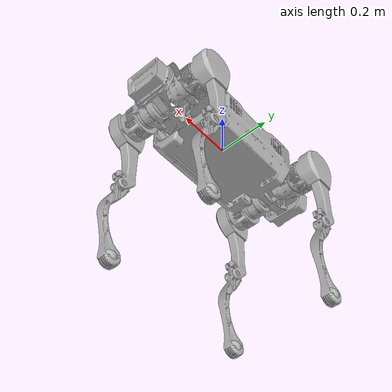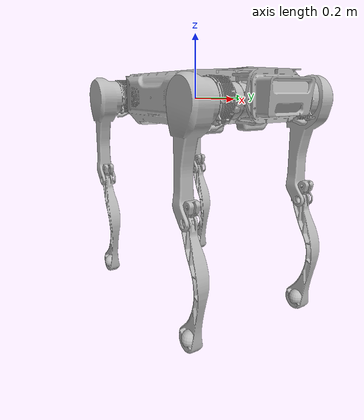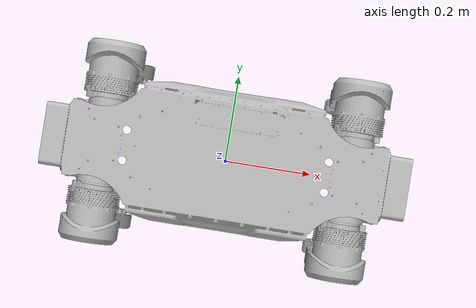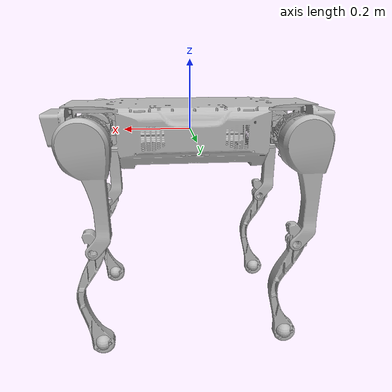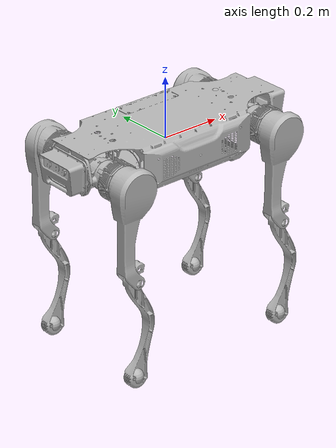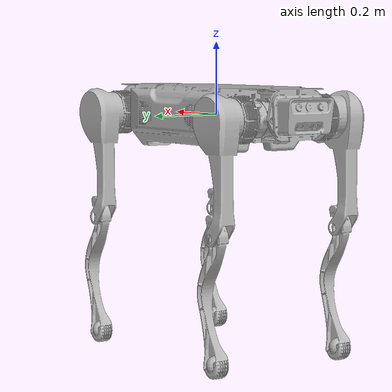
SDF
<sdf version='1.7'>
  <model name='x20'>
    <link name='body'>
      <inertial>
        <pose>0.005 0.000413 0.004 0 -0 0</pose>
        <mass>26.398</mass>
        <inertia>
          <ixx>0.1632</ixx>
          <ixy>-5.2136e-05</ixy>
          <ixz>-0.00019406</ixz>
          <iyy>0.40648</iyy>
          <iyz>8.2679e-05</iyz>
          <izz>0.52596</izz>
        </inertia>
      </inertial>
      <collision name='body_collision_collision'>
        <pose>0 0 0 0 -0 0</pose>
        <geometry>
          <mesh>
            <scale>1 1 1</scale>
            <uri>model:///meshes/x20_torso.stl</uri>
          </mesh>
        </geometry>
        <surface>
          <contact>
            <ode/>
          </contact>
          <friction>
            <ode/>
          </friction>
        </surface>
      </collision>
      <visual name='body_visual'>
        <pose>0 0 0 0 -0 0</pose>
        <geometry>
          <mesh>
            <scale>1 1 1</scale>
            <uri>model:///meshes/x20_torso.stl</uri>
          </mesh>
        </geometry>
      </visual>
      <visual name='body_fixed_joint_lump__imu_link_visual_1'>
        <pose>0 0 0 0 -0 0</pose>
        <geometry>
          <box>
            <size>0.001 0.001 0.001</size>
          </box>
        </geometry>
        <material>
          <script>
            <name>Gazebo/Red</name>
            <uri>file://media/materials/scripts/gazebo.material</uri>
          </script>
        </material>
      </visual>
      <gravity>1</gravity>
    </link>
    <joint name='10' type='revolute'>
      <pose relative_to='body'>0.292 -0.08 0 0 -0 0</pose>
      <parent>body</parent>
      <child>hip2</child>
      <axis>
        <xyz>-1 0 0</xyz>
        <limit>
          <lower>-0.38397</lower>
          <upper>0.38397</upper>
          <effort>126.1</effort>
          <velocity>12</velocity>
        </limit>
        <dynamics>
          <damping>0</damping>
          <friction>0</friction>
          <spring_reference>0</spring_reference>
          <spring_stiffness>0</spring_stiffness>
        </dynamics>
      </axis>
    </joint>
    <link name='hip2'>
      <pose relative_to='10'>0 0 0 0 -0 0</pose>
      <inertial>
        <pose>-0.000757 0.009 5.1e-05 0 -0 0</pose>
        <mass>1.5767</mass>
        <inertia>
          <ixx>0.0012141</ixx>
          <ixy>-6.1989e-06</ixy>
          <ixz>-2.8652e-06</ixz>
          <iyy>0.0016912</iyy>
          <iyz>3.7e-06</iyz>
          <izz>0.0013431</izz>
        </inertia>
      </inertial>
      <collision name='hip2_collision'>
        <pose>0 0 0 0 -0 0</pose>
        <geometry>
          <mesh>
            <scale>1 1 1</scale>
            <uri>model:///meshes/x20_fr_hip.stl</uri>
          </mesh>
        </geometry>
        <surface>
          <contact>
            <ode/>
          </contact>
          <friction>
            <ode>
              <mu>0.2</mu>
              <mu2>0.2</mu2>
            </ode>
          </friction>
        </surface>
      </collision>
      <visual name='hip2_visual'>
        <pose>0 0 0 0 -0 0</pose>
        <geometry>
          <mesh>
            <scale>1 1 1</scale>
            <uri>model:///meshes/x20_fr_hip.stl</uri>
          </mesh>
        </geometry>
      </visual>
    </link>
    <joint name='4' type='revolute'>
      <pose relative_to='hip2'>0 -0.12325 0 0 -0 0</pose>
      <parent>hip2</parent>
      <child>upper2</child>
      <axis>
        <xyz>0 -1 0</xyz>
        <limit>
          <lower>-2.75762</lower>
          <upper>0.48869</upper>
          <effort>111.4</effort>
          <velocity>19</velocity>
        </limit>
        <dynamics>
          <damping>0</damping>
          <friction>0</friction>
          <spring_reference>0</spring_reference>
          <spring_stiffness>0</spring_stiffness>
        </dynamics>
      </axis>
    </joint>
    <link name='upper2'>
      <pose relative_to='4'>0 0 0 0 -0 0</pose>
      <inertial>
        <pose>-0.002527 0.022119 -0.029194 0 -0 0</pose>
        <mass>3.0062</mass>
        <inertia>
          <ixx>0.00581</ixx>
          <ixy>-4.2781e-05</ixy>
          <ixz>-3.0682e-06</ixz>
          <iyy>0.0080684</iyy>
          <iyz>6.8812e-05</iyz>
          <izz>0.0038739</izz>
        </inertia>
      </inertial>
      <collision name='upper2_collision'>
        <pose>0 0 0 0 -0 0</pose>
        <geometry>
          <mesh>
            <scale>1 1 1</scale>
            <uri>model:///meshes/x20_r_thigh.stl</uri>
          </mesh>
        </geometry>
        <surface>
          <contact>
            <ode>
              <kp>1e+06</kp>
              <kd>100</kd>
            </ode>
          </contact>
          <friction>
            <ode>
              <mu>0.2</mu>
              <mu2>0.2</mu2>
            </ode>
          </friction>
        </surface>
      </collision>
      <visual name='upper2_visual'>
        <pose>0 0 0 0 -0 0</pose>
        <geometry>
          <mesh>
            <scale>1 1 1</scale>
            <uri>model:///meshes/x20_r_thigh.stl</uri>
          </mesh>
        </geometry>
      </visual>
      <self_collide>0</self_collide>
      <self_collide>0</self_collide>
    </link>
    <joint name='5' type='revolute'>
      <pose relative_to='upper2'>0 0 -0.3 0 -0 0</pose>
      <parent>upper2</parent>
      <child>lower2</child>
      <axis>
        <xyz>0 -1 0</xyz>
        <limit>
          <lower>0.66322</lower>
          <upper>2.84488</upper>
          <effort>195.8</effort>
          <velocity>19</velocity>
        </limit>
        <dynamics>
          <damping>0</damping>
          <friction>0</friction>
          <spring_reference>0</spring_reference>
          <spring_stiffness>0</spring_stiffness>
        </dynamics>
      </axis>
    </joint>
    <link name='lower2'>
      <pose relative_to='5'>0 0 0 0 -0 0</pose>
      <inertial>
        <pose>0.007522 2.6e-05 -0.17586 0 -0 0</pose>
        <mass>0.54849</mass>
        <inertia>
          <ixx>0.0057</ixx>
          <ixy>1.16e-07</ixy>
          <ixz>0.000153</ixz>
          <iyy>0.006</iyy>
          <iyz>-1.12e-06</iyz>
          <izz>0.00029</izz>
        </inertia>
      </inertial>
      <collision name='lower2_collision'>
        <pose>0 0 0 0 -0 0</pose>
        <geometry>
          <mesh>
            <scale>1 1 1</scale>
            <uri>model:///meshes/x20_shank.stl</uri>
          </mesh>
        </geometry>
        <surface>
          <contact>
            <ode>
              <kp>1e+06</kp>
              <kd>100</kd>
            </ode>
          </contact>
          <friction>
            <ode>
              <mu>0.6</mu>
              <mu2>0.6</mu2>
            </ode>
          </friction>
        </surface>
      </collision>
      <visual name='lower2_visual'>
        <pose>0 0 0 0 -0 0</pose>
        <geometry>
          <mesh>
            <scale>1 1 1</scale>
            <uri>model:///meshes/x20_shank.stl</uri>
          </mesh>
        </geometry>
      </visual>
      <self_collide>0</self_collide>
      <self_collide>1</self_collide>
    </link>
    <joint name='jtoe2' type='fixed'>
      <pose relative_to='lower2'>0 0 -0.33 0 -0 0</pose>
      <parent>lower2</parent>
      <child>toe2</child>
      <axis>
        <dynamics>
          <spring_reference>0</spring_reference>
          <spring_stiffness>0</spring_stiffness>
        </dynamics>
        <xyz>0 0 1</xyz>
        <limit>
          <lower>-1e+16</lower>
          <upper>1e+16</upper>
        </limit>
      </axis>
      <physics>
        <ode>
          <limit>
            <cfm>0</cfm>
            <erp>0.2</erp>
          </limit>
        </ode>
      </physics>
    </joint>
    <link name='toe2'>
      <pose relative_to='jtoe2'>0 0 0 0 -0 0</pose>
      <inertial>
        <pose>0 0 0 0 -0 0</pose>
        <mass>0.001</mass>
        <inertia>
          <ixx>5.184e-07</ixx>
          <ixy>0</ixy>
          <ixz>0</ixz>
          <iyy>5.184e-07</iyy>
          <iyz>0</iyz>
          <izz>5.184e-07</izz>
        </inertia>
      </inertial>
      <collision name='toe2_collision_collision'>
        <pose>0 0 0 0 -0 0</pose>
        <geometry>
          <sphere>
            <radius>0.036</radius>
          </sphere>
        </geometry>
        <surface>
          <contact>
            <ode>
              <kp>1e+06</kp>
              <kd>1</kd>
            </ode>
          </contact>
          <friction>
            <ode>
              <mu>0.6</mu>
              <mu2>0.6</mu2>
            </ode>
          </friction>
        </surface>
      </collision>
      <visual name='toe2_visual'>
        <pose>0 0 0 0 -0 0</pose>
        <geometry>
          <sphere>
            <radius>0.026</radius>
          </sphere>
        </geometry>
      </visual>
      <sensor name='toe2_contact' type='contact'>
        <plugin name='toe2_plugin' filename='libgazebo_ros_bumper.so'>
          <alwaysOn>1</alwaysOn>
          <updateRate>500</updateRate>
          <bumperTopicName>gazebo/toe2_contact_state</bumperTopicName>
          <frameName>world</frameName>
        </plugin>
        <contact>
          <collision>toe2_collision</collision>
          <topic>__default_topic__</topic>
        </contact>
        <update_rate>500</update_rate>
      </sensor>
      <self_collide>0</self_collide>
    </link>
    <joint name='11' type='revolute'>
      <pose relative_to='body'>-0.292 -0.08 0 0 -0 0</pose>
      <parent>body</parent>
      <child>hip3</child>
      <axis>
        <xyz>-1 0 0</xyz>
        <limit>
          <lower>-0.38397</lower>
          <upper>0.38397</upper>
          <effort>126.1</effort>
          <velocity>12</velocity>
        </limit>
        <dynamics>
          <damping>0</damping>
          <friction>0</friction>
          <spring_reference>0</spring_reference>
          <spring_stiffness>0</spring_stiffness>
        </dynamics>
      </axis>
    </joint>
    <link name='hip3'>
      <pose relative_to='11'>0 0 0 0 -0 0</pose>
      <inertial>
        <pose>0.000757 0.008913 -5.1e-05 0 -0 0</pose>
        <mass>1.5767</mass>
        <inertia>
          <ixx>0.0012141</ixx>
          <ixy>6.1989e-06</ixy>
          <ixz>-2.8652e-06</ixz>
          <iyy>0.0016912</iyy>
          <iyz>-3.7e-06</iyz>
          <izz>0.0013431</izz>
        </inertia>
      </inertial>
      <collision name='hip3_collision'>
        <pose>0 0 0 0 -0 0</pose>
        <geometry>
          <mesh>
            <scale>1 1 1</scale>
            <uri>model:///meshes/x20_hr_hip.stl</uri>
          </mesh>
        </geometry>
        <surface>
          <contact>
            <ode/>
          </contact>
          <friction>
            <ode>
              <mu>0.2</mu>
              <mu2>0.2</mu2>
            </ode>
          </friction>
        </surface>
      </collision>
      <visual name='hip3_visual'>
        <pose>0 0 0 0 -0 0</pose>
        <geometry>
          <mesh>
            <scale>1 1 1</scale>
            <uri>model:///meshes/x20_hr_hip.stl</uri>
          </mesh>
        </geometry>
      </visual>
    </link>
    <joint name='6' type='revolute'>
      <pose relative_to='hip3'>0 -0.12325 0 0 -0 0</pose>
      <parent>hip3</parent>
      <child>upper3</child>
      <axis>
        <xyz>0 -1 0</xyz>
        <limit>
          <lower>-2.75762</lower>
          <upper>0.48869</upper>
          <effort>111.4</effort>
          <velocity>19</velocity>
        </limit>
        <dynamics>
          <damping>0</damping>
          <friction>0</friction>
          <spring_reference>0</spring_reference>
          <spring_stiffness>0</spring_stiffness>
        </dynamics>
      </axis>
    </joint>
    <link name='upper3'>
      <pose relative_to='6'>0 0 0 0 -0 0</pose>
      <inertial>
        <pose>-0.002527 0.022119 -0.029194 0 -0 0</pose>
        <mass>3.0062</mass>
        <inertia>
          <ixx>0.00581</ixx>
          <ixy>-4.2781e-05</ixy>
          <ixz>-3.0681e-06</ixz>
          <iyy>0.0080684</iyy>
          <iyz>6.8812e-05</iyz>
          <izz>0.0038739</izz>
        </inertia>
      </inertial>
      <collision name='upper3_collision'>
        <pose>0 0 0 0 -0 0</pose>
        <geometry>
          <mesh>
            <scale>1 1 1</scale>
            <uri>model:///meshes/x20_r_thigh.stl</uri>
          </mesh>
        </geometry>
        <surface>
          <contact>
            <ode>
              <kp>1e+06</kp>
              <kd>100</kd>
            </ode>
          </contact>
          <friction>
            <ode>
              <mu>0.2</mu>
              <mu2>0.2</mu2>
            </ode>
          </friction>
        </surface>
      </collision>
      <visual name='upper3_visual'>
        <pose>0 0 0 0 -0 0</pose>
        <geometry>
          <mesh>
            <scale>1 1 1</scale>
            <uri>model:///meshes/x20_r_thigh.stl</uri>
          </mesh>
        </geometry>
      </visual>
      <self_collide>0</self_collide>
      <self_collide>0</self_collide>
    </link>
    <joint name='7' type='revolute'>
      <pose relative_to='upper3'>0 0 -0.3 0 -0 0</pose>
      <parent>upper3</parent>
      <child>lower3</child>
      <axis>
        <xyz>0 -1 0</xyz>
        <limit>
          <lower>0.66322</lower>
          <upper>2.84488</upper>
          <effort>195.8</effort>
          <velocity>19</velocity>
        </limit>
        <dynamics>
          <damping>0</damping>
          <friction>0</friction>
          <spring_reference>0</spring_reference>
          <spring_stiffness>0</spring_stiffness>
        </dynamics>
      </axis>
    </joint>
    <link name='lower3'>
      <pose relative_to='7'>0 0 0 0 -0 0</pose>
      <inertial>
        <pose>0.007522 2.6e-05 -0.17586 0 -0 0</pose>
        <mass>0.54849</mass>
        <inertia>
          <ixx>0.0056981</ixx>
          <ixy>1.1608e-07</ixy>
          <ixz>0.00015292</ixz>
          <iyy>0.0059026</iyy>
          <iyz>-1.1243e-06</iyz>
          <izz>0.00028822</izz>
        </inertia>
      </inertial>
      <collision name='lower3_collision'>
        <pose>0 0 0 0 -0 0</pose>
        <geometry>
          <mesh>
            <scale>1 1 1</scale>
            <uri>model:///meshes/x20_shank.stl</uri>
          </mesh>
        </geometry>
        <surface>
          <contact>
            <ode>
              <kp>1e+06</kp>
              <kd>100</kd>
            </ode>
          </contact>
          <friction>
            <ode>
              <mu>0.6</mu>
              <mu2>0.6</mu2>
            </ode>
          </friction>
        </surface>
      </collision>
      <visual name='lower3_visual'>
        <pose>0 0 0 0 -0 0</pose>
        <geometry>
          <mesh>
            <scale>1 1 1</scale>
            <uri>model:///meshes/x20_shank.stl</uri>
          </mesh>
        </geometry>
      </visual>
      <self_collide>0</self_collide>
      <self_collide>1</self_collide>
    </link>
    <joint name='jtoe3' type='fixed'>
      <pose relative_to='lower3'>0 0 -0.33 0 -0 0</pose>
      <parent>lower3</parent>
      <child>toe3</child>
      <axis>
        <dynamics>
          <spring_reference>0</spring_reference>
          <spring_stiffness>0</spring_stiffness>
        </dynamics>
        <xyz>0 0 1</xyz>
        <limit>
          <lower>-1e+16</lower>
          <upper>1e+16</upper>
        </limit>
      </axis>
      <physics>
        <ode>
          <limit>
            <cfm>0</cfm>
            <erp>0.2</erp>
          </limit>
        </ode>
      </physics>
    </joint>
    <link name='toe3'>
      <pose relative_to='jtoe3'>0 0 0 0 -0 0</pose>
      <inertial>
        <pose>0 0 0 0 -0 0</pose>
        <mass>0.001</mass>
        <inertia>
          <ixx>5.184e-07</ixx>
          <ixy>0</ixy>
          <ixz>0</ixz>
          <iyy>5.184e-07</iyy>
          <iyz>0</iyz>
          <izz>5.184e-07</izz>
        </inertia>
      </inertial>
      <collision name='toe3_collision_collision'>
        <pose>0 0 0 0 -0 0</pose>
        <geometry>
          <sphere>
            <radius>0.036</radius>
          </sphere>
        </geometry>
        <surface>
          <contact>
            <ode>
              <kp>1e+06</kp>
              <kd>1</kd>
            </ode>
          </contact>
          <friction>
            <ode>
              <mu>0.6</mu>
              <mu2>0.6</mu2>
            </ode>
          </friction>
        </surface>
      </collision>
      <visual name='toe3_visual'>
        <pose>0 0 0 0 -0 0</pose>
        <geometry>
          <sphere>
            <radius>0.026</radius>
          </sphere>
        </geometry>
      </visual>
      <sensor name='toe3_contact' type='contact'>
        <plugin name='toe3_plugin' filename='libgazebo_ros_bumper.so'>
          <alwaysOn>1</alwaysOn>
          <updateRate>500</updateRate>
          <bumperTopicName>gazebo/toe3_contact_state</bumperTopicName>
          <frameName>world</frameName>
        </plugin>
        <contact>
          <collision>toe3_collision</collision>
          <topic>__default_topic__</topic>
        </contact>
        <update_rate>500</update_rate>
      </sensor>
      <self_collide>0</self_collide>
    </link>
    <joint name='8' type='revolute'>
      <pose relative_to='body'>0.292 0.08 0 0 -0 0</pose>
      <parent>body</parent>
      <child>hip0</child>
      <axis>
        <xyz>1 0 0</xyz>
        <limit>
          <lower>-0.38397</lower>
          <upper>0.38397</upper>
          <effort>126.1</effort>
          <velocity>12</velocity>
        </limit>
        <dynamics>
          <damping>0</damping>
          <friction>0</friction>
          <spring_reference>0</spring_reference>
          <spring_stiffness>0</spring_stiffness>
        </dynamics>
      </axis>
    </joint>
    <link name='hip0'>
      <pose relative_to='8'>0 0 0 0 -0 0</pose>
      <inertial>
        <pose>-0.000757 -0.008913 -5.1e-05 0 -0 0</pose>
        <mass>1.5767</mass>
        <inertia>
          <ixx>0.0012141</ixx>
          <ixy>6.1989e-06</ixy>
          <ixz>2.8652e-06</ixz>
          <iyy>0.0016912</iyy>
          <iyz>3.7e-06</iyz>
          <izz>0.0013431</izz>
        </inertia>
      </inertial>
      <collision name='hip0_collision_collision'>
        <pose>0 0 0 0 -0 0</pose>
        <geometry>
          <mesh>
            <scale>1 1 1</scale>
            <uri>model:///meshes/x20_fl_hip.stl</uri>
          </mesh>
        </geometry>
        <surface>
          <contact>
            <ode/>
          </contact>
          <friction>
            <ode>
              <mu>0.2</mu>
              <mu2>0.2</mu2>
            </ode>
          </friction>
        </surface>
      </collision>
      <visual name='hip0_visual'>
        <pose>0 0 0 0 -0 0</pose>
        <geometry>
          <mesh>
            <scale>1 1 1</scale>
            <uri>model:///meshes/x20_fl_hip.stl</uri>
          </mesh>
        </geometry>
      </visual>
    </link>
    <joint name='0' type='revolute'>
      <pose relative_to='hip0'>0 0.12325 0 0 -0 0</pose>
      <parent>hip0</parent>
      <child>upper0</child>
      <axis>
        <xyz>0 -1 0</xyz>
        <limit>
          <lower>-2.75762</lower>
          <upper>0.48869</upper>
          <effort>111.4</effort>
          <velocity>19</velocity>
        </limit>
        <dynamics>
          <damping>0</damping>
          <friction>0</friction>
          <spring_reference>0</spring_reference>
          <spring_stiffness>0</spring_stiffness>
        </dynamics>
      </axis>
    </joint>
    <link name='upper0'>
      <pose relative_to='0'>0 0 0 0 -0 0</pose>
      <inertial>
        <pose>-0.002526 -0.022118 -0.0292 0 -0 0</pose>
        <mass>3.0063</mass>
        <inertia>
          <ixx>0.0058102</ixx>
          <ixy>4.2848e-05</ixy>
          <ixz>-3.0437e-06</ixz>
          <iyy>0.0080686</iyy>
          <iyz>-6.889e-05</iyz>
          <izz>0.003874</izz>
        </inertia>
      </inertial>
      <collision name='upper0_collision_collision'>
        <pose>0 0 0 0 -0 0</pose>
        <geometry>
          <mesh>
            <scale>1 1 1</scale>
            <uri>model:///meshes/x20_l_thigh.stl</uri>
          </mesh>
        </geometry>
        <surface>
          <contact>
            <ode>
              <kp>1e+06</kp>
              <kd>100</kd>
            </ode>
          </contact>
          <friction>
            <ode>
              <mu>0.2</mu>
              <mu2>0.2</mu2>
            </ode>
          </friction>
        </surface>
      </collision>
      <visual name='upper0_visual'>
        <pose>0 0 0 0 -0 0</pose>
        <geometry>
          <mesh>
            <scale>1 1 1</scale>
            <uri>model:///meshes/x20_l_thigh.stl</uri>
          </mesh>
        </geometry>
      </visual>
      <self_collide>0</self_collide>
      <self_collide>0</self_collide>
    </link>
    <joint name='1' type='revolute'>
      <pose relative_to='upper0'>0 0 -0.3 0 -0 0</pose>
      <parent>upper0</parent>
      <child>lower0</child>
      <axis>
        <xyz>0 -1 0</xyz>
        <limit>
          <lower>0.66322</lower>
          <upper>2.84488</upper>
          <effort>195.8</effort>
          <velocity>19</velocity>
        </limit>
        <dynamics>
          <damping>0</damping>
          <friction>0</friction>
          <spring_reference>0</spring_reference>
          <spring_stiffness>0</spring_stiffness>
        </dynamics>
      </axis>
    </joint>
    <link name='lower0'>
      <pose relative_to='1'>0 0 0 0 -0 0</pose>
      <inertial>
        <pose>0.007522 2.6e-05 -0.17586 0 -0 0</pose>
        <mass>0.54849</mass>
        <inertia>
          <ixx>0.0057</ixx>
          <ixy>1.16e-07</ixy>
          <ixz>0.000153</ixz>
          <iyy>0.006</iyy>
          <iyz>-1.12e-06</iyz>
          <izz>0.00029</izz>
        </inertia>
      </inertial>
      <collision name='lower0_collision_collision'>
        <pose>0 0 0 0 -0 0</pose>
        <geometry>
          <mesh>
            <scale>1 1 1</scale>
            <uri>model:///meshes/x20_shank.stl</uri>
          </mesh>
        </geometry>
        <surface>
          <contact>
            <ode>
              <kp>1e+06</kp>
              <kd>100</kd>
            </ode>
          </contact>
          <friction>
            <ode>
              <mu>0.6</mu>
              <mu2>0.6</mu2>
            </ode>
          </friction>
        </surface>
      </collision>
      <visual name='lower0_visual'>
        <pose>0 0 0 0 -0 0</pose>
        <geometry>
          <mesh>
            <scale>1 1 1</scale>
            <uri>model:///meshes/x20_shank.stl</uri>
          </mesh>
        </geometry>
      </visual>
      <self_collide>0</self_collide>
      <self_collide>1</self_collide>
    </link>
    <joint name='jtoe0' type='fixed'>
      <pose relative_to='lower0'>0 0 -0.33 0 -0 0</pose>
      <parent>lower0</parent>
      <child>toe0</child>
      <axis>
        <dynamics>
          <spring_reference>0</spring_reference>
          <spring_stiffness>0</spring_stiffness>
        </dynamics>
        <xyz>0 0 1</xyz>
        <limit>
          <lower>-1e+16</lower>
          <upper>1e+16</upper>
        </limit>
      </axis>
      <physics>
        <ode>
          <limit>
            <cfm>0</cfm>
            <erp>0.2</erp>
          </limit>
        </ode>
      </physics>
    </joint>
    <link name='toe0'>
      <pose relative_to='jtoe0'>0 0 0 0 -0 0</pose>
      <inertial>
        <pose>0 0 0 0 -0 0</pose>
        <mass>0.001</mass>
        <inertia>
          <ixx>5.184e-07</ixx>
          <ixy>0</ixy>
          <ixz>0</ixz>
          <iyy>5.184e-07</iyy>
          <iyz>0</iyz>
          <izz>5.184e-07</izz>
        </inertia>
      </inertial>
      <collision name='toe0_collision_collision'>
        <pose>0 0 0 0 -0 0</pose>
        <geometry>
          <sphere>
            <radius>0.036</radius>
          </sphere>
        </geometry>
        <surface>
          <contact>
            <ode>
              <kp>1e+06</kp>
              <kd>1</kd>
            </ode>
          </contact>
          <friction>
            <ode>
              <mu>0.6</mu>
              <mu2>0.6</mu2>
            </ode>
          </friction>
        </surface>
      </collision>
      <visual name='toe0_visual'>
        <pose>0 0 0 0 -0 0</pose>
        <geometry>
          <sphere>
            <radius>0.026</radius>
          </sphere>
        </geometry>
      </visual>
      <sensor name='toe0_contact' type='contact'>
        <plugin name='toe0_plugin' filename='libgazebo_ros_bumper.so'>
          <alwaysOn>1</alwaysOn>
          <updateRate>500</updateRate>
          <bumperTopicName>gazebo/toe0_contact_state</bumperTopicName>
          <frameName>world</frameName>
        </plugin>
        <contact>
          <collision>toe0_collision</collision>
          <topic>__default_topic__</topic>
        </contact>
        <update_rate>500</update_rate>
      </sensor>
      <self_collide>0</self_collide>
    </link>
    <joint name='9' type='revolute'>
      <pose relative_to='body'>-0.292 0.08 0 0 -0 0</pose>
      <parent>body</parent>
      <child>hip1</child>
      <axis>
        <xyz>1 0 0</xyz>
        <limit>
          <lower>-0.38397</lower>
          <upper>0.38397</upper>
          <effort>126.1</effort>
          <velocity>12</velocity>
        </limit>
        <dynamics>
          <damping>0</damping>
          <friction>0</friction>
          <spring_reference>0</spring_reference>
          <spring_stiffness>0</spring_stiffness>
        </dynamics>
      </axis>
    </joint>
    <link name='hip1'>
      <pose relative_to='9'>0 0 0 0 -0 0</pose>
      <inertial>
        <pose>0.000757 -0.009 5.1e-05 0 -0 0</pose>
        <mass>1.5767</mass>
        <inertia>
          <ixx>0.00121</ixx>
          <ixy>-6.2e-06</ixy>
          <ixz>2.9e-06</ixz>
          <iyy>0.0017</iyy>
          <iyz>-3.7e-06</iyz>
          <izz>0.00134</izz>
        </inertia>
      </inertial>
      <collision name='hip1_collision_collision'>
        <pose>0 0 0 0 -0 0</pose>
        <geometry>
          <mesh>
            <scale>1 1 1</scale>
            <uri>model:///meshes/x20_hl_hip.stl</uri>
          </mesh>
        </geometry>
        <surface>
          <contact>
            <ode/>
          </contact>
          <friction>
            <ode>
              <mu>0.2</mu>
              <mu2>0.2</mu2>
            </ode>
          </friction>
        </surface>
      </collision>
      <visual name='hip1_visual'>
        <pose>0 0 0 0 -0 0</pose>
        <geometry>
          <mesh>
            <scale>1 1 1</scale>
            <uri>model:///meshes/x20_hl_hip.stl</uri>
          </mesh>
        </geometry>
      </visual>
    </link>
    <joint name='2' type='revolute'>
      <pose relative_to='hip1'>0 0.12325 0 0 -0 0</pose>
      <parent>hip1</parent>
      <child>upper1</child>
      <axis>
        <xyz>0 -1 0</xyz>
        <limit>
          <lower>-2.75762</lower>
          <upper>0.48869</upper>
          <effort>111.4</effort>
          <velocity>19</velocity>
        </limit>
        <dynamics>
          <damping>0</damping>
          <friction>0</friction>
          <spring_reference>0</spring_reference>
          <spring_stiffness>0</spring_stiffness>
        </dynamics>
      </axis>
    </joint>
    <link name='upper1'>
      <pose relative_to='2'>0 0 0 0 -0 0</pose>
      <inertial>
        <pose>-0.002526 -0.022118 -0.0292 0 -0 0</pose>
        <mass>3.0063</mass>
        <inertia>
          <ixx>0.0058102</ixx>
          <ixy>4.2848e-05</ixy>
          <ixz>-3.0433e-06</ixz>
          <iyy>0.008</iyy>
          <iyz>-6.8889e-05</iyz>
          <izz>0.003874</izz>
        </inertia>
      </inertial>
      <collision name='upper1_collision_collision'>
        <pose>0 0 0 0 -0 0</pose>
        <geometry>
          <mesh>
            <scale>1 1 1</scale>
            <uri>model:///meshes/x20_l_thigh.stl</uri>
          </mesh>
        </geometry>
        <surface>
          <contact>
            <ode>
              <kp>1e+06</kp>
              <kd>100</kd>
            </ode>
          </contact>
          <friction>
            <ode>
              <mu>0.2</mu>
              <mu2>0.2</mu2>
            </ode>
          </friction>
        </surface>
      </collision>
      <visual name='upper1_visual'>
        <pose>0 0 0 0 -0 0</pose>
        <geometry>
          <mesh>
            <scale>1 1 1</scale>
            <uri>model:///meshes/x20_l_thigh.stl</uri>
          </mesh>
        </geometry>
      </visual>
      <self_collide>0</self_collide>
      <self_collide>0</self_collide>
    </link>
    <joint name='3' type='revolute'>
      <pose relative_to='upper1'>0 0 -0.3 0 -0 0</pose>
      <parent>upper1</parent>
      <child>lower1</child>
      <axis>
        <xyz>0 -1 0</xyz>
        <limit>
          <lower>0.66322</lower>
          <upper>2.84488</upper>
          <effort>195.8</effort>
          <velocity>19</velocity>
        </limit>
        <dynamics>
          <damping>0</damping>
          <friction>0</friction>
          <spring_reference>0</spring_reference>
          <spring_stiffness>0</spring_stiffness>
        </dynamics>
      </axis>
    </joint>
    <link name='lower1'>
      <pose relative_to='3'>0 0 0 0 -0 0</pose>
      <inertial>
        <pose>0.007522 2.6e-05 -0.17586 0 -0 0</pose>
        <mass>0.54849</mass>
        <inertia>
          <ixx>0.0057</ixx>
          <ixy>1.16e-07</ixy>
          <ixz>0.000153</ixz>
          <iyy>0.006</iyy>
          <iyz>-1.12e-06</iyz>
          <izz>0.00029</izz>
        </inertia>
      </inertial>
      <collision name='lower1_collision_collision'>
        <pose>0 0 0 0 -0 0</pose>
        <geometry>
          <mesh>
            <scale>1 1 1</scale>
            <uri>model:///meshes/x20_shank.stl</uri>
          </mesh>
        </geometry>
        <surface>
          <contact>
            <ode>
              <kp>1e+06</kp>
              <kd>100</kd>
            </ode>
          </contact>
          <friction>
            <ode>
              <mu>0.6</mu>
              <mu2>0.6</mu2>
            </ode>
          </friction>
        </surface>
      </collision>
      <visual name='lower1_visual'>
        <pose>0 0 0 0 -0 0</pose>
        <geometry>
          <mesh>
            <scale>1 1 1</scale>
            <uri>model:///meshes/x20_shank.stl</uri>
          </mesh>
        </geometry>
      </visual>
      <self_collide>0</self_collide>
      <self_collide>1</self_collide>
    </link>
    <joint name='jtoe1' type='fixed'>
      <pose relative_to='lower1'>0 0 -0.33 0 -0 0</pose>
      <parent>lower1</parent>
      <child>toe1</child>
      <axis>
        <dynamics>
          <spring_reference>0</spring_reference>
          <spring_stiffness>0</spring_stiffness>
        </dynamics>
        <xyz>0 0 1</xyz>
        <limit>
          <lower>-1e+16</lower>
          <upper>1e+16</upper>
        </limit>
      </axis>
      <physics>
        <ode>
          <limit>
            <cfm>0</cfm>
            <erp>0.2</erp>
          </limit>
        </ode>
      </physics>
    </joint>
    <link name='toe1'>
      <pose relative_to='jtoe1'>0 0 0 0 -0 0</pose>
      <inertial>
        <pose>0 0 0 0 -0 0</pose>
        <mass>0.001</mass>
        <inertia>
          <ixx>5.184e-07</ixx>
          <ixy>0</ixy>
          <ixz>0</ixz>
          <iyy>5.184e-07</iyy>
          <iyz>0</iyz>
          <izz>5.184e-07</izz>
        </inertia>
      </inertial>
      <collision name='toe1_collision_collision'>
        <pose>0 0 0 0 -0 0</pose>
        <geometry>
          <sphere>
            <radius>0.036</radius>
          </sphere>
        </geometry>
        <surface>
          <contact>
            <ode>
              <kp>1e+06</kp>
              <kd>1</kd>
            </ode>
          </contact>
          <friction>
            <ode>
              <mu>0.6</mu>
              <mu2>0.6</mu2>
            </ode>
          </friction>
        </surface>
      </collision>
      <visual name='toe1_visual'>
        <pose>0 0 0 0 -0 0</pose>
        <geometry>
          <sphere>
            <radius>0.026</radius>
          </sphere>
        </geometry>
      </visual>
      <sensor name='toe1_contact' type='contact'>
        <plugin name='toe1_plugin' filename='libgazebo_ros_bumper.so'>
          <alwaysOn>1</alwaysOn>
          <updateRate>500</updateRate>
          <bumperTopicName>gazebo/toe1_contact_state</bumperTopicName>
          <frameName>world</frameName>
        </plugin>
        <contact>
          <collision>toe1_collision</collision>
          <topic>__default_topic__</topic>
        </contact>
        <update_rate>500</update_rate>
      </sensor>
      <self_collide>0</self_collide>
    </link>
    <plugin name='gazebo_ros_control' filename='libgazebo_ros_control.so'>
      <robotNamespace>/robot_1</robotNamespace>
      <robotSimType>gazebo_ros_control/DefaultRobotHWSim</robotSimType>
    </plugin>
    <plugin name='ground_truth_estimator' filename='libground_truth_estimator.so'>
      <updateRateHZ>500.0</updateRateHZ>
    </plugin>
    <frame name='imu_joint' attached_to='body'>
      <pose>0 0 0 0 -0 0</pose>
    </frame>
    <frame name='imu_link' attached_to='imu_joint'/>
  </model>
</sdf>
